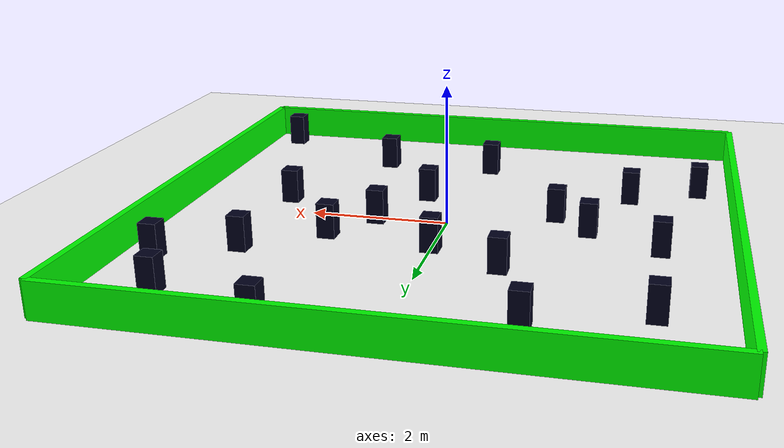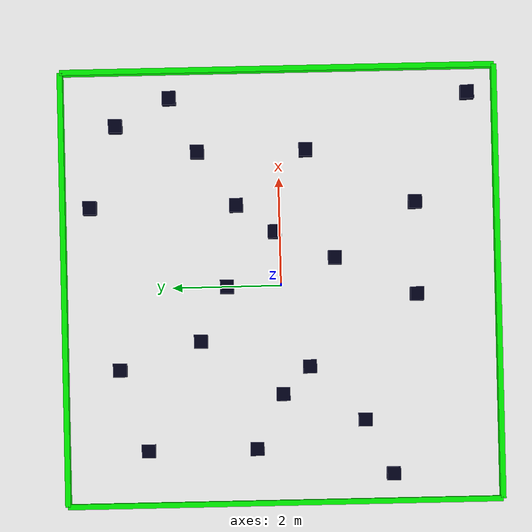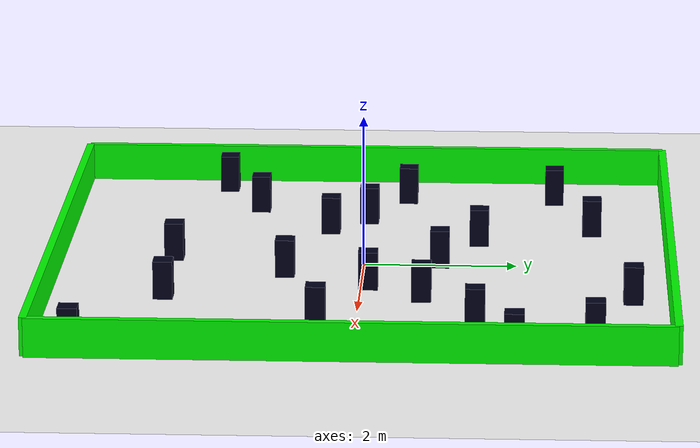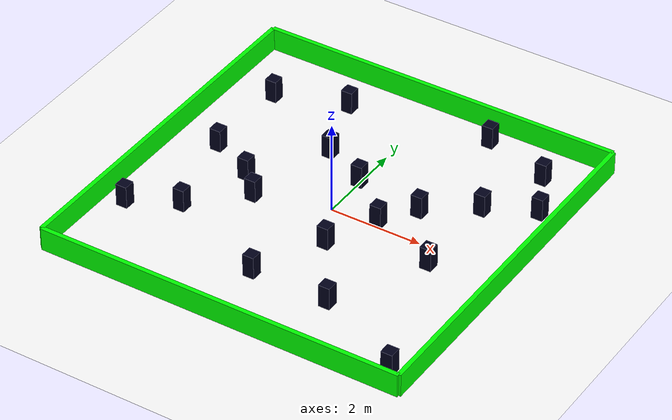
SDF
<!--
@file wandering_world.xacro
@author Daniel Onderka (xonder05)
-->

<sdf version="1.9">
  <world name="wandering">

    <plugin name="gz::sim::systems::Physics" filename="ignition-gazebo-physics-system"/>
    <plugin name="gz::sim::systems::SceneBroadcaster" filename="ignition-gazebo-scene-broadcaster-system"/>
    <plugin name="gz::sim::systems::UserCommands" filename="ignition-gazebo-user-commands-system"/>
    <plugin name="gz::sim::systems::Sensors" filename="ignition-gazebo-sensors-system">
      <render_engine>ogre2</render_engine>
    </plugin>

    <physics name="1ms" type="ignored">
      <max_step_size>0.004</max_step_size>
      <real_time_factor>1</real_time_factor>
      <real_time_update_rate>250</real_time_update_rate>
    </physics>
    <gravity>0 0 -9.8</gravity>
    <magnetic_field>6e-06 2.3e-05 -4.2e-05</magnetic_field>
    <atmosphere type="adiabatic"/>
    <scene>
      <ambient>0.4 0.4 0.4 1</ambient>
      <background>0.7 0.7 0.7 1</background>
      <shadows>true</shadows>
    </scene>

    <!-- Sun and Ground -->

    <light type="directional" name="sun">
      <cast_shadows>true</cast_shadows>
      <pose>0 0 10 0 0 0</pose>
      <diffuse>0.8 0.8 0.8 1</diffuse>
      <specular>0.2 0.2 0.2 1</specular>
      <attenuation>
        <range>1000</range>
        <constant>0.9</constant>
        <linear>0.01</linear>
        <quadratic>0.001</quadratic>
      </attenuation>
      <direction>-0.5 0.1 -0.9</direction>
    </light>

    <model name="ground_plane">
      <static>true</static>
      <link name="ground_plane">
        <visual name="visual">
          <geometry>
            <plane>
              <normal>0 0 1</normal>
              <size>100 100</size>
            </plane>
          </geometry>
          <material>
            <ambient>1 1 1 1</ambient>
            <diffuse>1 1 1 1</diffuse>
            <specular>1 1 1 1</specular>
          </material>
        </visual>
        <collision name="collision">
          <geometry>
            <plane>
              <normal>0 0 1</normal>
              <size>200 200</size>
            </plane>
          </geometry>
          <surface>
            <friction>
              <ode/>
            </friction>
            <bounce/>
            <contact/>
          </surface>
        </collision>
      </link>
    </model>

    <!-- Borders -->

    <model name="border1">
      <static>true</static>
      <pose>0 4 0.25 0 0 0</pose>
      <link name="link">
        <visual name="visual">
          <geometry><box><size>8 0.1 0.5</size></box></geometry>
          <material><diffuse>0.0 1.0 0.0 1</diffuse></material>
        </visual>
        <collision name="collision">
          <geometry><box><size>8 0.1 0.5</size></box></geometry>
        </collision>
      </link>
    </model>

    <model name="border2">
      <static>true</static>
      <pose>0 -4 0.25 0 0 0</pose>
      <link name="link">
        <visual name="visual">
          <geometry><box><size>8 0.1 0.5</size></box></geometry>
          <material><diffuse>0.0 1.0 0.0 1</diffuse></material>
        </visual>
        <collision name="collision">
          <geometry><box><size>8 0.1 0.5</size></box></geometry>
        </collision>
      </link>
    </model>

    <model name="border3">
      <static>true</static>
      <pose>4 0 0.25 0 0 1.57</pose>
      <link name="link">
        <visual name="visual">
          <geometry><box><size>8 0.1 0.5</size></box></geometry>
          <material><diffuse>0.0 1.0 0.0 1</diffuse></material>
        </visual>
        <collision name="collision">
          <geometry><box><size>8 0.1 0.5</size></box></geometry>
        </collision>
      </link>
    </model>

    <model name="border4">
      <static>true</static>
      <pose>-4 0 0.25 0 0 1.57</pose>
      <link name="link">
        <visual name="visual">
          <geometry><box><size>8 0.1 0.5</size></box></geometry>
          <material><diffuse>0.0 1.0 0.0 1</diffuse></material>
        </visual>
        <collision name="collision">
          <geometry><box><size>8 0.1 0.5</size></box></geometry>
        </collision>
      </link>
    </model>

    <!-- Obstacles -->

    <include>
      <name>obstacles</name>
      <uri>model://worlds/wandering/obstacles.sdf</uri>
    </include>

  </world>
</sdf>

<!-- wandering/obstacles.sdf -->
<!--
@file obstacles.sdf
@author Daniel Onderka (xonder05)
-->

<sdf version="1.9">
  <model name="obstacles">

    <model name="obstacle1">
      <pose>-3.5 -2 0.25 0 0 0</pose>
      <link name="link">
        <visual name="visual">
          <geometry><box><size>0.25 0.25 0.5</size></box></geometry>
          <material><diffuse>0.0 0.0 0.1 1</diffuse></material>
        </visual>
        <collision name="collision">
          <geometry><box><size>0.25 0.25 0.5</size></box></geometry>
        </collision>
      </link>
    </model>

    <model name="obstacle2">
      <pose>3.5 2 0.25 0 0 0</pose>
      <link name="link">
        <visual name="visual">
          <geometry><box><size>0.25 0.25 0.5</size></box></geometry>
          <material><diffuse>0.0 0.0 0.1 1</diffuse></material>
        </visual>
        <collision name="collision">
          <geometry><box><size>0.25 0.25 0.5</size></box></geometry>
        </collision>
      </link>
    </model>

    <model name="obstacle3">
      <pose>-1.5 -0.5 0.25 0 0 0</pose>
      <link name="link">
        <visual name="visual">
          <geometry><box><size>0.25 0.25 0.5</size></box></geometry>
          <material><diffuse>0.0 0.0 0.1 1</diffuse></material>
        </visual>
        <collision name="collision">
          <geometry><box><size>0.25 0.25 0.5</size></box></geometry>
        </collision>
      </link>
    </model>

    <model name="obstacle4">
      <pose>1.5 0.8 0.25 0 0 0</pose>
      <link name="link">
        <visual name="visual">
          <geometry><box><size>0.25 0.25 0.5</size></box></geometry>
          <material><diffuse>0.0 0.0 0.1 1</diffuse></material>
        </visual>
        <collision name="collision">
          <geometry><box><size>0.25 0.25 0.5</size></box></geometry>
        </collision>
      </link>
    </model>

    <model name="obstacle5">
      <pose>-3 2.5 0.25 0 0 0</pose>
      <link name="link">
        <visual name="visual">
          <geometry><box><size>0.25 0.25 0.5</size></box></geometry>
          <material><diffuse>0.0 0.0 0.1 1</diffuse></material>
        </visual>
        <collision name="collision">
          <geometry><box><size>0.25 0.25 0.5</size></box></geometry>
        </collision>
      </link>
    </model>

    <model name="obstacle6">
      <pose>2.5 1.5 0.25 0 0 0</pose>
      <link name="link">
        <visual name="visual">
          <geometry><box><size>0.25 0.25 0.5</size></box></geometry>
          <material><diffuse>0.0 0.0 0.1 1</diffuse></material>
        </visual>
        <collision name="collision">
          <geometry><box><size>0.25 0.25 0.5</size></box></geometry>
        </collision>
      </link>
    </model>

    <model name="obstacle7">
      <pose>-1.5 3 0.25 0 0 0</pose>
      <link name="link">
        <visual name="visual">
          <geometry><box><size>0.25 0.25 0.5</size></box></geometry>
          <material><diffuse>0.0 0.0 0.1 1</diffuse></material>
        </visual>
        <collision name="collision">
          <geometry><box><size>0.25 0.25 0.5</size></box></geometry>
        </collision>
      </link>
    </model>

    <model name="obstacle8">
      <pose>0 1 0.25 0 0 0</pose>
      <link name="link">
        <visual name="visual">
          <geometry><box><size>0.25 0.25 0.5</size></box></geometry>
          <material><diffuse>0.0 0.0 0.1 1</diffuse></material>
        </visual>
        <collision name="collision">
          <geometry><box><size>0.25 0.25 0.5</size></box></geometry>
        </collision>
      </link>
    </model>

    <model name="obstacle9">
      <pose>3 3 0.25 0 0 0</pose>
      <link name="link">
        <visual name="visual">
          <geometry><box><size>0.25 0.25 0.5</size></box></geometry>
          <material><diffuse>0.0 0.0 0.1 1</diffuse></material>
        </visual>
        <collision name="collision">
          <geometry><box><size>0.25 0.25 0.5</size></box></geometry>
        </collision>
      </link>
    </model>

    <model name="obstacle10">
      <pose>-2 0 0.25 0 0 0</pose>
      <link name="link">
        <visual name="visual">
          <geometry><box><size>0.25 0.25 0.5</size></box></geometry>
          <material><diffuse>0.0 0.0 0.1 1</diffuse></material>
        </visual>
        <collision name="collision">
          <geometry><box><size>0.25 0.25 0.5</size></box></geometry>
        </collision>
      </link>
    </model>

    <model name="obstacle11">
      <pose>1.5 -2.5 0.25 0 0 0</pose>
      <link name="link">
        <visual name="visual">
          <geometry><box><size>0.25 0.25 0.5</size></box></geometry>
          <material><diffuse>0.0 0.0 0.1 1</diffuse></material>
        </visual>
        <collision name="collision">
          <geometry><box><size>0.25 0.25 0.5</size></box></geometry>
        </collision>
      </link>
    </model>

    <model name="obstacle12">
      <pose>-3 0.5 0.25 0 0 0</pose>
      <link name="link">
        <visual name="visual">
          <geometry><box><size>0.25 0.25 0.5</size></box></geometry>
          <material><diffuse>0.0 0.0 0.1 1</diffuse></material>
        </visual>
        <collision name="collision">
          <geometry><box><size>0.25 0.25 0.5</size></box></geometry>
        </collision>
      </link>
    </model>

    <model name="obstacle13">
      <pose>1.5 3.5 0.25 0 0 0</pose>
      <link name="link">
        <visual name="visual">
          <geometry><box><size>0.25 0.25 0.5</size></box></geometry>
          <material><diffuse>0.0 0.0 0.1 1</diffuse></material>
        </visual>
        <collision name="collision">
          <geometry><box><size>0.25 0.25 0.5</size></box></geometry>
        </collision>
      </link>
    </model>

    <model name="obstacle14">
      <pose>-2.5 -1.5 0.25 0 0 0</pose>
      <link name="link">
        <visual name="visual">
          <geometry><box><size>0.25 0.25 0.5</size></box></geometry>
          <material><diffuse>0.0 0.0 0.1 1</diffuse></material>
        </visual>
        <collision name="collision">
          <geometry><box><size>0.25 0.25 0.5</size></box></geometry>
        </collision>
      </link>
    </model>

    <model name="obstacle15">
      <pose>0.5 -1 0.25 0 0 0</pose>
      <link name="link">
        <visual name="visual">
          <geometry><box><size>0.25 0.25 0.5</size></box></geometry>
          <material><diffuse>0.0 0.0 0.1 1</diffuse></material>
        </visual>
        <collision name="collision">
          <geometry><box><size>0.25 0.25 0.5</size></box></geometry>
        </collision>
      </link>
    </model>

    <model name="obstacle16">
      <pose>3.5 -3.5 0.25 0 0 0</pose>
      <link name="link">
        <visual name="visual">
          <geometry><box><size>0.25 0.25 0.5</size></box></geometry>
          <material><diffuse>0.0 0.0 0.1 1</diffuse></material>
        </visual>
        <collision name="collision">
          <geometry><box><size>0.25 0.25 0.5</size></box></geometry>
        </collision>
      </link>
    </model>

    <model name="obstacle17">
      <pose>-1 1.5 0.25 0 0 0</pose>
      <link name="link">
        <visual name="visual">
          <geometry><box><size>0.25 0.25 0.5</size></box></geometry>
          <material><diffuse>0.0 0.0 0.1 1</diffuse></material>
        </visual>
        <collision name="collision">
          <geometry><box><size>0.25 0.25 0.5</size></box></geometry>
        </collision>
      </link>
    </model>

    <model name="obstacle18">
      <pose>2.5 -0.5 0.25 0 0 0</pose>
      <link name="link">
        <visual name="visual">
          <geometry><box><size>0.25 0.25 0.5</size></box></geometry>
          <material><diffuse>0.0 0.0 0.1 1</diffuse></material>
        </visual>
        <collision name="collision">
          <geometry><box><size>0.25 0.25 0.5</size></box></geometry>
        </collision>
      </link>
    </model>

    <model name="obstacle19">
      <pose>-0.2 -2.5 0.25 0 0 0</pose>
      <link name="link">
        <visual name="visual">
          <geometry><box><size>0.25 0.25 0.5</size></box></geometry>
          <material><diffuse>0.0 0.0 0.1 1</diffuse></material>
        </visual>
        <collision name="collision">
          <geometry><box><size>0.25 0.25 0.5</size></box></geometry>
        </collision>
      </link>
    </model>

    <model name="obstacle20">
      <pose>1 0.1 0.25 0 0 0</pose>
      <link name="link">
        <visual name="visual">
          <geometry><box><size>0.25 0.25 0.5</size></box></geometry>
          <material><diffuse>0.0 0.0 0.1 1</diffuse></material>
        </visual>
        <collision name="collision">
          <geometry><box><size>0.25 0.25 0.5</size></box></geometry>
        </collision>
      </link>
    </model>

  </model>
</sdf>
